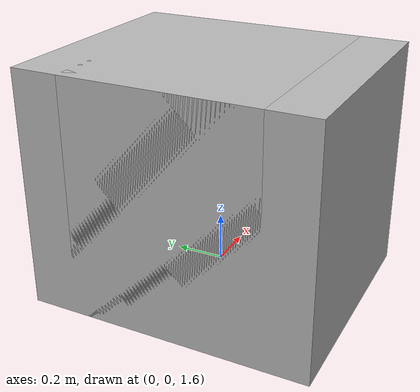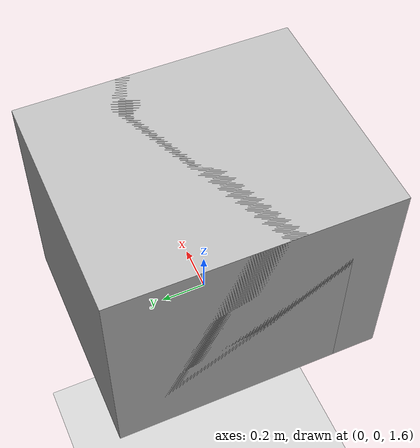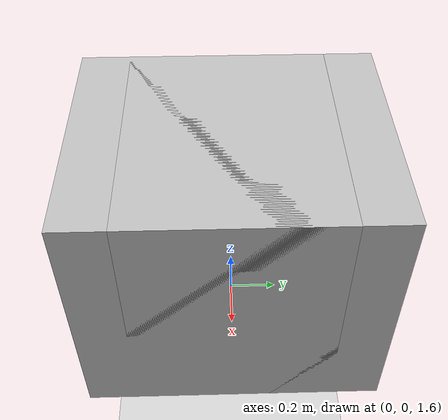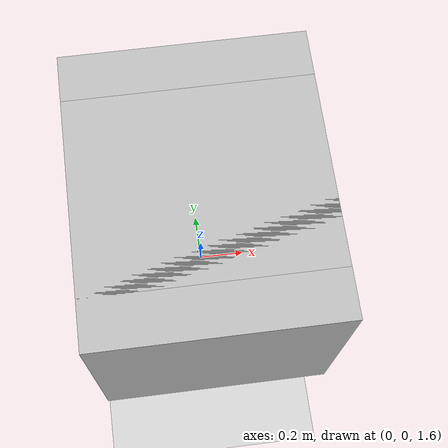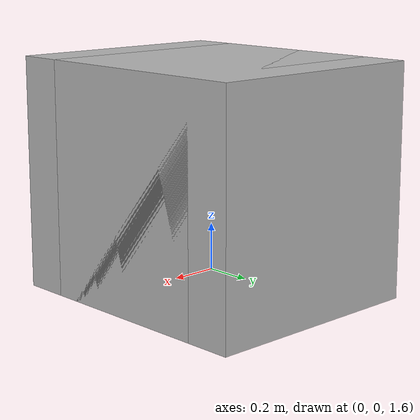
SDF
<?xml version="1.0" ?>
<sdf version="1.4">
  <world name="default">
    <physics type="dart">
        <gravity>0 0 -10.0</gravity>
    </physics>
    <!-- A global light source -->
    <include>
      <uri>model://sun</uri>
    </include>
    <!-- A ground plane -->
    <include>
      <uri>model://ground_plane</uri>
    </include>

  <model name ='multiLinkModel'>
  <pose>0 0 2 0 -0 0</pose>

  <link name ='link01'>
    <pose>0 0.1 0 0 -0 0</pose>
    <collision name ='geom'>
      <geometry>
        <box><size>1 1 1</size></box>
      </geometry>
    </collision>
    <visual name ='visual'>
      <geometry>
        <box><size>1 1 1</size></box>
      </geometry>
    </visual>
  </link>

  <link name ='link02'>
    <pose>0 -0.1 0 0 -0 0</pose>
    <collision name ='geom'>
      <geometry>
        <box><size>1 1 1</size></box>
      </geometry>
    </collision>
    <visual name ='visual'>
      <geometry>
        <box><size>1 1 1</size></box>
      </geometry>
    </visual>
  </link>

  </model>

  </world>
</sdf>
